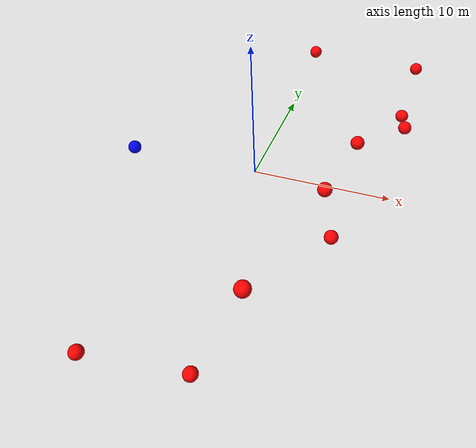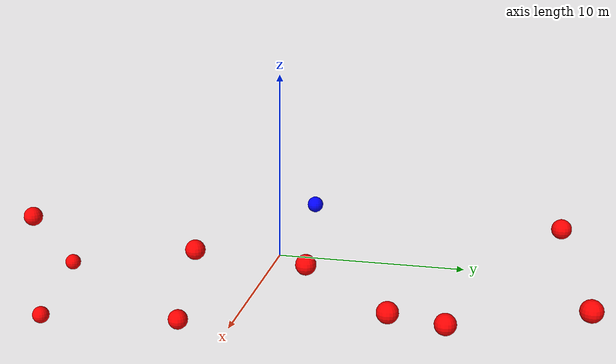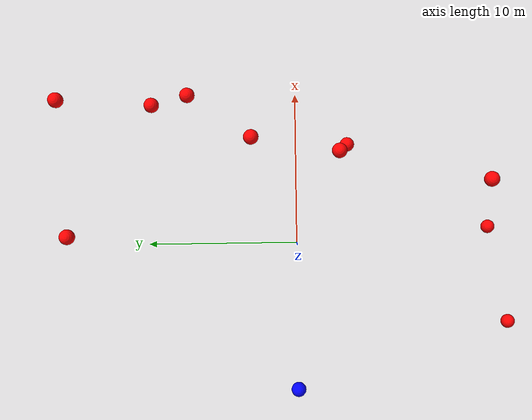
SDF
<?xml version="1.0" ?>
<sdf version="1.8">
    <world name="3d_world">
        <physics name="1ms" type="ode">
            <max_step_size>0.001</max_step_size>
            <real_time_factor>1.0</real_time_factor>
            <real_time_update_rate>1000.0</real_time_update_rate>
        </physics>
        <gravity>0 0 0</gravity>

        <plugin
            filename="gz-sim-physics-system"
            name="gz::sim::v8::systems::Physics">
        </plugin>
        <plugin
            filename="libignition-gazebo-user-commands-system.so"
            name="ignition::gazebo::systems::UserCommands">
        </plugin>
        <plugin
            filename="gz-sim-scene-broadcaster-system"
            name="gz::sim::systems::SceneBroadcaster">
        </plugin>
        <plugin
            filename="gz-sim-sensors-system"
            name="gz::sim::systems::Sensors">
            <render_engine>ogre2</render_engine>
        </plugin>

        <light type="directional" name="sun">
            <cast_shadows>true</cast_shadows>
            <pose>0 0 10 0 0 0</pose>
            <diffuse>0.8 0.8 0.8 1</diffuse>
            <specular>0.2 0.2 0.2 1</specular>
            <attenuation>
                <range>1000</range>
                <constant>0.9</constant>
                <linear>0.01</linear>
                <quadratic>0.001</quadratic>
            </attenuation>
            <direction>-0.5 0.1 -0.9</direction>
        </light>

        <!-- AGENTE -->
        <model name='agente' canonical_link='chassis'>
            <pose relative_to='world'>-10.0 0 0.0 0 0 0</pose>
            <link name='chassis'>
                <pose relative_to='__model__'>0.0 0 0.0 0 0 0</pose>
                <inertial>
                    <mass>1.14395</mass>
                    <inertia>
                        <ixx>0.095329</ixx>
                        <ixy>0</ixy>
                        <ixz>0</ixz>
                        <iyy>0.381317</iyy>
                        <iyz>0</iyz>
                        <izz>0.476646</izz>
                    </inertia>
                </inertial>
                <visual name='visual'>
                    <geometry>
                        <sphere>
                            <radius>0.5</radius>
                        </sphere>
                    </geometry>
                    <material>
                        <ambient>0.0 0.0 1.0 1</ambient>
                        <diffuse>0.0 0.0 1.0 1</diffuse>
                        <specular>0.0 0.0 1.0 1</specular>
                    </material>
                </visual>
                <collision name='collision'>
                    <geometry>
                        <sphere>
                            <radius>0.5</radius>
                        </sphere>
                    </geometry>
                </collision>
                <enable_gravity>false</enable_gravity>
            </link>

            <link name='lidar_link'>
                <pose relative_to='chassis'>0.0 0 0.1 0 0 0</pose>
                <inertial>
                    <mass>0.1</mass>
                    <inertia>
                        <ixx>0.000166667</ixx>
                        <iyy>0.000166667</iyy>
                        <izz>0.000166667</izz>
                    </inertia>
                </inertial>
                <collision name='collision'>
                    <geometry>
                        <cylinder>
                            <radius>0.05</radius>
                            <length>0.1</length>
                        </cylinder>
                    </geometry>
                </collision>
                <visual name='visual'>
                    <geometry>
                        <cylinder>
                            <radius>0.05</radius>
                            <length>0.1</length>
                        </cylinder>
                    </geometry>
                    <material>
                        <ambient>0.0 1.0 0.0 1</ambient>
                        <diffuse>0.0 1.0 0.0 1</diffuse>
                        <specular>0.0 1.0 0.0 1</specular>
                    </material>
                </visual>
                <sensor name="lidar" type="gpu_lidar">
                    <topic>scan</topic>
                    <update_rate>10</update_rate>
                    <lidar>
                        <scan>
                            <horizontal>
                                <samples>5000</samples>
                                <resolution>1</resolution>
                                <min_angle>-3.14159</min_angle>
                                <max_angle>3.14159</max_angle>
                            </horizontal>
                        </scan>
                        <range>
                            <min>0.1</min>
                            <max>10.0</max>
                            <resolution>0.01</resolution>
                        </range>
                    </lidar>
                    <visualize>true</visualize>
                    <always_on>true</always_on>
                    <update_rate>10</update_rate>
                    <pose_frame>lidar</pose_frame>
                </sensor>
                <enable_gravity>false</enable_gravity>
            </link>

            <joint name="lidar_joint" type="fixed">
                <parent>chassis</parent>
                <child>lidar_link</child>
            </joint>

            <plugin
                filename="ignition-gazebo-joint-state-publisher-system"
                name="ignition::gazebo::systems::JointStatePublisher">
            </plugin>
            <plugin
                filename="ignition-gazebo-odometry-publisher-system"
                name="ignition::gazebo::systems::OdometryPublisher">
                <dimensions>3</dimensions>
            </plugin>
            <plugin
                filename="ignition-gazebo-velocity-control-system"
                name="ignition::gazebo::systems::VelocityControl">
                <initial_linear>0.0 0 0</initial_linear>
                <initial_angular>0 0 0.0</initial_angular>
            </plugin>
            <plugin
                filename="libignition-gazebo-pose-publisher-system.so"
                name="ignition::gazebo::systems::PosePublisher">
                <topic>/agente/pose</topic>
                <frame_id>agente</frame_id>
                <update_rate>30</update_rate>
            </plugin>
        </model>

        <!-- OBSTACLE 1 -->
        <model name='obstacle_1' canonical_link='obstacle'>
            <static>false</static>
            <pose relative_to='world'>-6.06 -15.46 -3.88 0 0 0</pose>
            <link name='obstacle'>
                <pose relative_to='__model__'>0.0 0 0.0 0 0 0</pose>
                <visual name='visual'>
                    <geometry>
                        <sphere>
                            <radius>0.50</radius>
                        </sphere>
                    </geometry>
                    <material>
                        <ambient>1.0 0.0 0.0 1</ambient>
                        <diffuse>1.0 0.0 0.0 1</diffuse>
                        <specular>1.0 0.0 0.0 1</specular>
                    </material>
                </visual>
                <collision name='collision'>
                    <geometry>
                        <sphere>
                            <radius>0.50</radius>
                        </sphere>
                    </geometry>
                </collision>
                <enable_gravity>false</enable_gravity>
            </link>

            <plugin
                filename="ignition-gazebo-velocity-control-system"
                name="ignition::gazebo::systems::VelocityControl">
                <initial_linear>1.10 1.62 0.41</initial_linear>
                <initial_angular>0 0 0</initial_angular>
            </plugin>

            <plugin
                filename="ignition-gazebo-odometry-publisher-system"
                name="ignition::gazebo::systems::OdometryPublisher">
                <dimensions>3</dimensions>
            </plugin>
        </model>

        <!-- OBSTACLE 2 -->
        <model name='obstacle_2' canonical_link='obstacle'>
            <static>false</static>
            <pose relative_to='world'>9.83 7.14 1.40 0 0 0</pose>
            <link name='obstacle'>
                <pose relative_to='__model__'>0.0 0 0.0 0 0 0</pose>
                <visual name='visual'>
                    <geometry>
                        <sphere>
                            <radius>0.50</radius>
                        </sphere>
                    </geometry>
                    <material>
                        <ambient>1.0 0.0 0.0 1</ambient>
                        <diffuse>1.0 0.0 0.0 1</diffuse>
                        <specular>1.0 0.0 0.0 1</specular>
                    </material>
                </visual>
                <collision name='collision'>
                    <geometry>
                        <sphere>
                            <radius>0.50</radius>
                        </sphere>
                    </geometry>
                </collision>
                <enable_gravity>false</enable_gravity>
            </link>

            <plugin
                filename="ignition-gazebo-velocity-control-system"
                name="ignition::gazebo::systems::VelocityControl">
                <initial_linear>-1.15 -1.31 -0.26</initial_linear>
                <initial_angular>0 0 0</initial_angular>
            </plugin>

            <plugin
                filename="ignition-gazebo-odometry-publisher-system"
                name="ignition::gazebo::systems::OdometryPublisher">
                <dimensions>3</dimensions>
            </plugin>
        </model>

        <!-- OBSTACLE 3 -->
        <model name='obstacle_3' canonical_link='obstacle'>
            <static>false</static>
            <pose relative_to='world'>0.94 -14.26 -4.58 0 0 0</pose>
            <link name='obstacle'>
                <pose relative_to='__model__'>0.0 0 0.0 0 0 0</pose>
                <visual name='visual'>
                    <geometry>
                        <sphere>
                            <radius>0.50</radius>
                        </sphere>
                    </geometry>
                    <material>
                        <ambient>1.0 0.0 0.0 1</ambient>
                        <diffuse>1.0 0.0 0.0 1</diffuse>
                        <specular>1.0 0.0 0.0 1</specular>
                    </material>
                </visual>
                <collision name='collision'>
                    <geometry>
                        <sphere>
                            <radius>0.50</radius>
                        </sphere>
                    </geometry>
                </collision>
                <enable_gravity>false</enable_gravity>
            </link>

            <plugin
                filename="ignition-gazebo-velocity-control-system"
                name="ignition::gazebo::systems::VelocityControl">
                <initial_linear>0.62 1.81 0.58</initial_linear>
                <initial_angular>0 0 0</initial_angular>
            </plugin>

            <plugin
                filename="ignition-gazebo-odometry-publisher-system"
                name="ignition::gazebo::systems::OdometryPublisher">
                <dimensions>3</dimensions>
            </plugin>
        </model>

        <!-- OBSTACLE 4 -->
        <model name='obstacle_4' canonical_link='obstacle'>
            <static>false</static>
            <pose relative_to='world'>9.30 9.61 0.87 0 0 0</pose>
            <link name='obstacle'>
                <pose relative_to='__model__'>0.0 0 0.0 0 0 0</pose>
                <visual name='visual'>
                    <geometry>
                        <sphere>
                            <radius>0.50</radius>
                        </sphere>
                    </geometry>
                    <material>
                        <ambient>1.0 0.0 0.0 1</ambient>
                        <diffuse>1.0 0.0 0.0 1</diffuse>
                        <specular>1.0 0.0 0.0 1</specular>
                    </material>
                </visual>
                <collision name='collision'>
                    <geometry>
                        <sphere>
                            <radius>0.50</radius>
                        </sphere>
                    </geometry>
                </collision>
                <enable_gravity>false</enable_gravity>
            </link>

            <plugin
                filename="ignition-gazebo-velocity-control-system"
                name="ignition::gazebo::systems::VelocityControl">
                <initial_linear>-1.57 -1.23 -0.11</initial_linear>
                <initial_angular>0 0 0</initial_angular>
            </plugin>

            <plugin
                filename="ignition-gazebo-odometry-publisher-system"
                name="ignition::gazebo::systems::OdometryPublisher">
                <dimensions>3</dimensions>
            </plugin>
        </model>

        <!-- OBSTACLE 5 -->
        <model name='obstacle_5' canonical_link='obstacle'>
            <static>false</static>
            <pose relative_to='world'>0.58 14.71 2.81 0 0 0</pose>
            <link name='obstacle'>
                <pose relative_to='__model__'>0.0 0 0.0 0 0 0</pose>
                <visual name='visual'>
                    <geometry>
                        <sphere>
                            <radius>0.50</radius>
                        </sphere>
                    </geometry>
                    <material>
                        <ambient>1.0 0.0 0.0 1</ambient>
                        <diffuse>1.0 0.0 0.0 1</diffuse>
                        <specular>1.0 0.0 0.0 1</specular>
                    </material>
                </visual>
                <collision name='collision'>
                    <geometry>
                        <sphere>
                            <radius>0.50</radius>
                        </sphere>
                    </geometry>
                </collision>
                <enable_gravity>false</enable_gravity>
            </link>

            <plugin
                filename="ignition-gazebo-velocity-control-system"
                name="ignition::gazebo::systems::VelocityControl">
                <initial_linear>0.55 -1.89 -0.36</initial_linear>
                <initial_angular>0 0 0</initial_angular>
            </plugin>

            <plugin
                filename="ignition-gazebo-odometry-publisher-system"
                name="ignition::gazebo::systems::OdometryPublisher">
                <dimensions>3</dimensions>
            </plugin>
        </model>

        <!-- OBSTACLE 6 -->
        <model name='obstacle_6' canonical_link='obstacle'>
            <static>false</static>
            <pose relative_to='world'>5.97 -2.85 2.14 0 0 0</pose>
            <link name='obstacle'>
                <pose relative_to='__model__'>0.0 0 0.0 0 0 0</pose>
                <visual name='visual'>
                    <geometry>
                        <sphere>
                            <radius>0.50</radius>
                        </sphere>
                    </geometry>
                    <material>
                        <ambient>1.0 0.0 0.0 1</ambient>
                        <diffuse>1.0 0.0 0.0 1</diffuse>
                        <specular>1.0 0.0 0.0 1</specular>
                    </material>
                </visual>
                <collision name='collision'>
                    <geometry>
                        <sphere>
                            <radius>0.50</radius>
                        </sphere>
                    </geometry>
                </collision>
                <enable_gravity>false</enable_gravity>
            </link>

            <plugin
                filename="ignition-gazebo-velocity-control-system"
                name="ignition::gazebo::systems::VelocityControl">
                <initial_linear>-0.95 0.62 -0.46</initial_linear>
                <initial_angular>0 0 0</initial_angular>
            </plugin>

            <plugin
                filename="ignition-gazebo-odometry-publisher-system"
                name="ignition::gazebo::systems::OdometryPublisher">
                <dimensions>3</dimensions>
            </plugin>
        </model>

        <!-- OBSTACLE 7 -->
        <model name='obstacle_7' canonical_link='obstacle'>
            <static>false</static>
            <pose relative_to='world'>9.48 15.56 2.15 0 0 0</pose>
            <link name='obstacle'>
                <pose relative_to='__model__'>0.0 0 0.0 0 0 0</pose>
                <visual name='visual'>
                    <geometry>
                        <sphere>
                            <radius>0.50</radius>
                        </sphere>
                    </geometry>
                    <material>
                        <ambient>1.0 0.0 0.0 1</ambient>
                        <diffuse>1.0 0.0 0.0 1</diffuse>
                        <specular>1.0 0.0 0.0 1</specular>
                    </material>
                </visual>
                <collision name='collision'>
                    <geometry>
                        <sphere>
                            <radius>0.50</radius>
                        </sphere>
                    </geometry>
                </collision>
                <enable_gravity>false</enable_gravity>
            </link>

            <plugin
                filename="ignition-gazebo-velocity-control-system"
                name="ignition::gazebo::systems::VelocityControl">
                <initial_linear>-0.81 -1.81 -0.25</initial_linear>
                <initial_angular>0 0 0</initial_angular>
            </plugin>

            <plugin
                filename="ignition-gazebo-odometry-publisher-system"
                name="ignition::gazebo::systems::OdometryPublisher">
                <dimensions>3</dimensions>
            </plugin>
        </model>

        <!-- OBSTACLE 8 -->
        <model name='obstacle_8' canonical_link='obstacle'>
            <static>false</static>
            <pose relative_to='world'>6.79 -3.58 -1.30 0 0 0</pose>
            <link name='obstacle'>
                <pose relative_to='__model__'>0.0 0 0.0 0 0 0</pose>
                <visual name='visual'>
                    <geometry>
                        <sphere>
                            <radius>0.50</radius>
                        </sphere>
                    </geometry>
                    <material>
                        <ambient>1.0 0.0 0.0 1</ambient>
                        <diffuse>1.0 0.0 0.0 1</diffuse>
                        <specular>1.0 0.0 0.0 1</specular>
                    </material>
                </visual>
                <collision name='collision'>
                    <geometry>
                        <sphere>
                            <radius>0.50</radius>
                        </sphere>
                    </geometry>
                </collision>
                <enable_gravity>false</enable_gravity>
            </link>

            <plugin
                filename="ignition-gazebo-velocity-control-system"
                name="ignition::gazebo::systems::VelocityControl">
                <initial_linear>-0.16 0.57 0.21</initial_linear>
                <initial_angular>0 0 0</initial_angular>
            </plugin>

            <plugin
                filename="ignition-gazebo-odometry-publisher-system"
                name="ignition::gazebo::systems::OdometryPublisher">
                <dimensions>3</dimensions>
            </plugin>
        </model>

        <!-- OBSTACLE 9 -->
        <model name='obstacle_9' canonical_link='obstacle'>
            <static>false</static>
            <pose relative_to='world'>3.96 -12.60 2.54 0 0 0</pose>
            <link name='obstacle'>
                <pose relative_to='__model__'>0.0 0 0.0 0 0 0</pose>
                <visual name='visual'>
                    <geometry>
                        <sphere>
                            <radius>0.50</radius>
                        </sphere>
                    </geometry>
                    <material>
                        <ambient>1.0 0.0 0.0 1</ambient>
                        <diffuse>1.0 0.0 0.0 1</diffuse>
                        <specular>1.0 0.0 0.0 1</specular>
                    </material>
                </visual>
                <collision name='collision'>
                    <geometry>
                        <sphere>
                            <radius>0.50</radius>
                        </sphere>
                    </geometry>
                </collision>
                <enable_gravity>false</enable_gravity>
            </link>

            <plugin
                filename="ignition-gazebo-velocity-control-system"
                name="ignition::gazebo::systems::VelocityControl">
                <initial_linear>0.44 1.86 -0.37</initial_linear>
                <initial_angular>0 0 0</initial_angular>
            </plugin>

            <plugin
                filename="ignition-gazebo-odometry-publisher-system"
                name="ignition::gazebo::systems::OdometryPublisher">
                <dimensions>3</dimensions>
            </plugin>
        </model>

        <!-- OBSTACLE 10 -->
        <model name='obstacle_10' canonical_link='obstacle'>
            <static>false</static>
            <pose relative_to='world'>6.92 2.91 2.19 0 0 0</pose>
            <link name='obstacle'>
                <pose relative_to='__model__'>0.0 0 0.0 0 0 0</pose>
                <visual name='visual'>
                    <geometry>
                        <sphere>
                            <radius>0.50</radius>
                        </sphere>
                    </geometry>
                    <material>
                        <ambient>1.0 0.0 0.0 1</ambient>
                        <diffuse>1.0 0.0 0.0 1</diffuse>
                        <specular>1.0 0.0 0.0 1</specular>
                    </material>
                </visual>
                <collision name='collision'>
                    <geometry>
                        <sphere>
                            <radius>0.50</radius>
                        </sphere>
                    </geometry>
                </collision>
                <enable_gravity>false</enable_gravity>
            </link>

            <plugin
                filename="ignition-gazebo-velocity-control-system"
                name="ignition::gazebo::systems::VelocityControl">
                <initial_linear>-1.51 -0.69 -0.52</initial_linear>
                <initial_angular>0 0 0</initial_angular>
            </plugin>

            <plugin
                filename="ignition-gazebo-odometry-publisher-system"
                name="ignition::gazebo::systems::OdometryPublisher">
                <dimensions>3</dimensions>
            </plugin>
        </model>

    </world>
</sdf>
